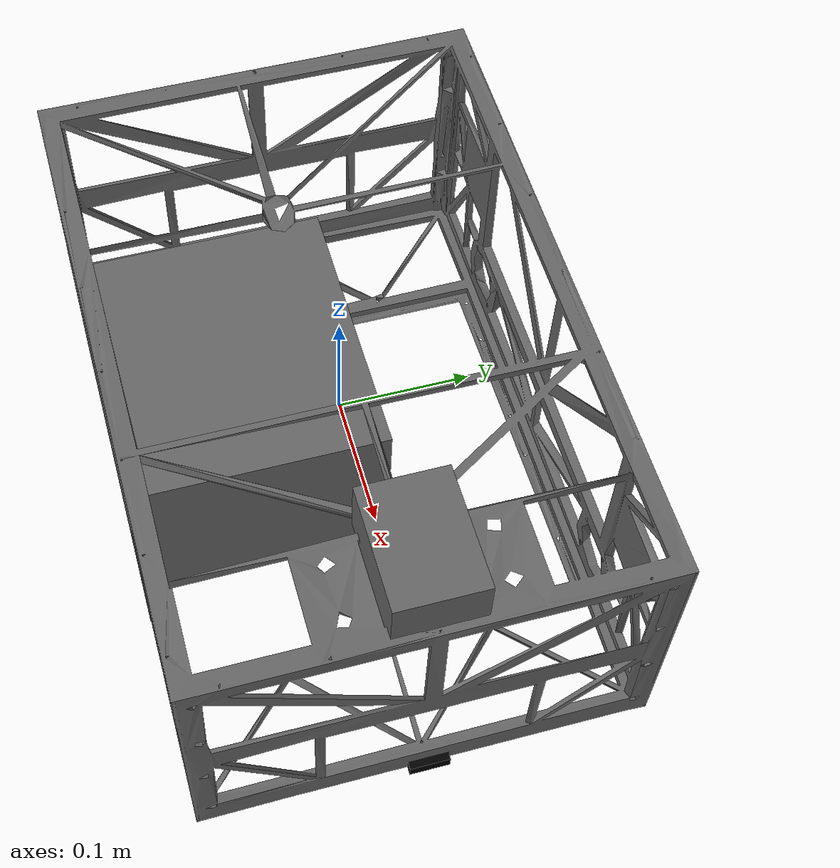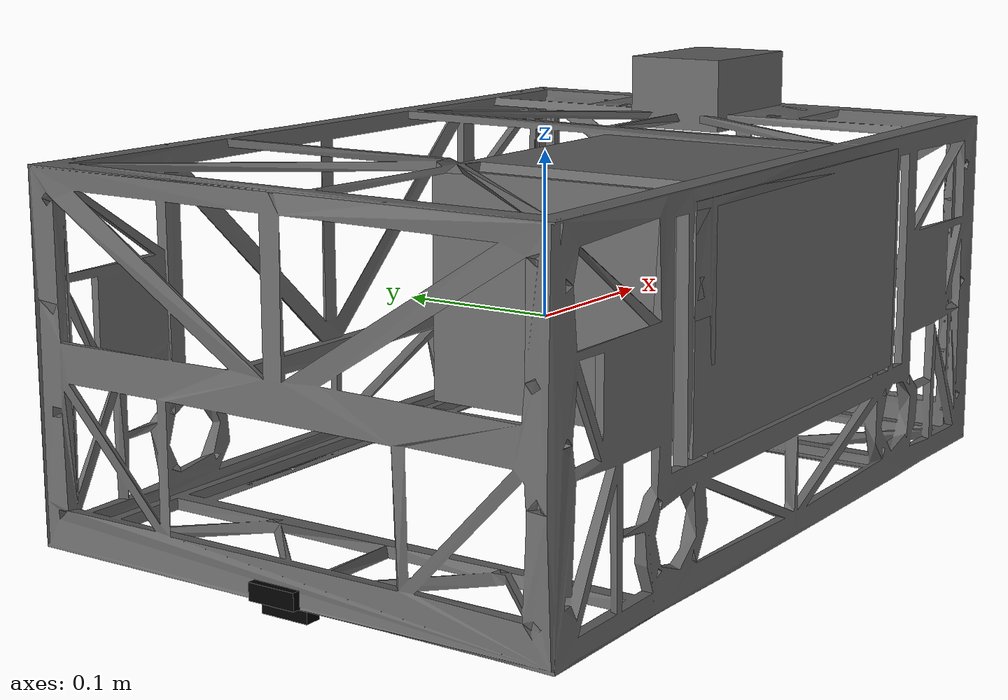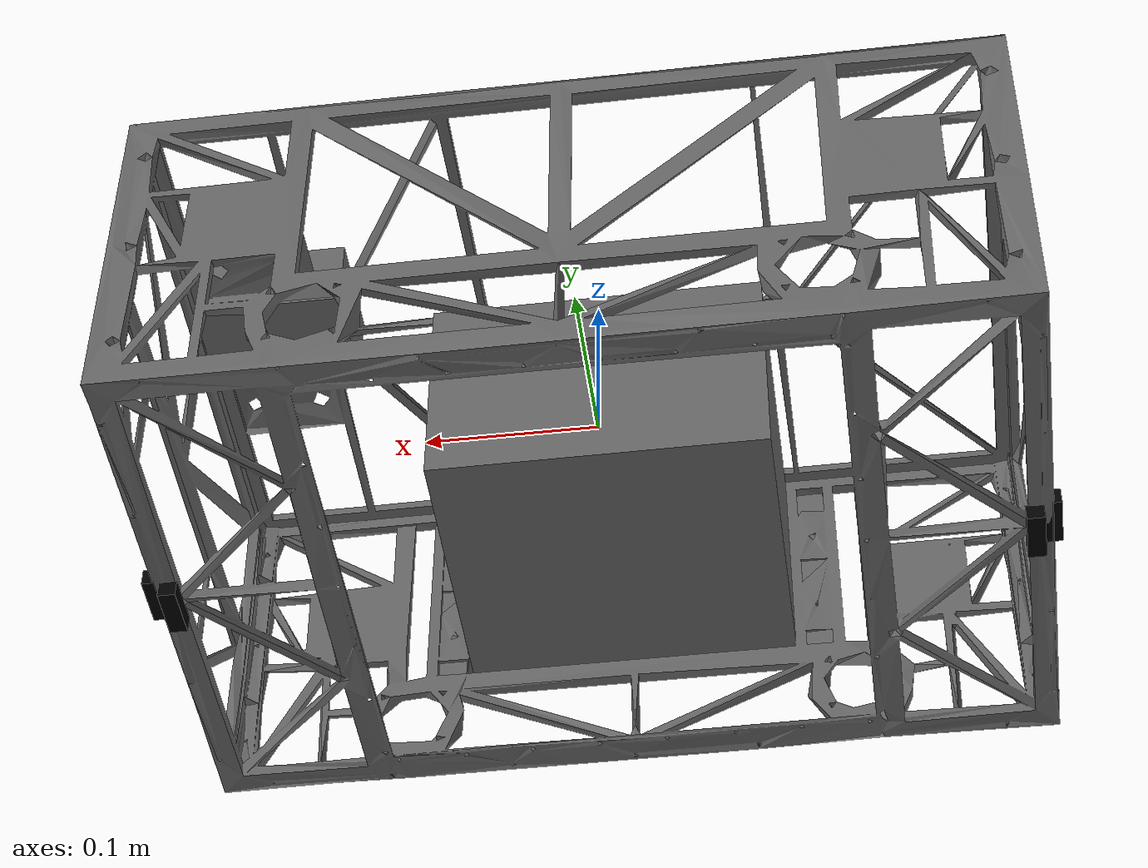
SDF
<?xml version="1.0" ?>
<!-- |    This document was autogenerated by xacro from /home/clynamen/teamdiana/gazebo-assets/models/definitions/rover_amalia_chassis/model.xacro | -->
<!-- |    EDITING THIS FILE BY HAND IS NOT RECOMMENDED                                 | -->
<sdf version="1.5" xmlns:xacro="http://www.w3.org/2001/XMLSchema-instance">
  <model name="rover_amalia_chassis">
    <link name="rover_amalia_chassis">
      <pose>0 0 0 0 0 0</pose>
      <inertial>
        <pose>0.0216667 0 -0.0215556 0 -0 0</pose>
        <mass>15.6</mass>
        <inertia>
          <ixx>0.6385976</ixx>
          <ixy>0</ixy>
          <ixz>0</ixz>
          <iyy>0.521</iyy>
          <iyz>0</iyz>
          <izz>0.318954</izz>
        </inertia>
      </inertial>
      <visual name="rover_amalia_chassis_body_visual">
        <pose>0 0 0 0 0 0</pose>
        <geometry>
          <mesh>
            <uri>model://rover_amalia_chassis/meshes/chassis.dae</uri>
          </mesh>
        </geometry>
        <material>
          <diffuse>0.4 0.4 0.4 1</diffuse>
          <specular>1 1 1 1</specular>
        </material>
      </visual>
      <collision name="rover_amalia_chassis_body_collision">
        <pose>0 0 0 0 0 0</pose>
        <geometry>
          <box>
            <size>0.492 0.334 0.215</size>
          </box>
        </geometry>
        <max_contacts>10</max_contacts>
      </collision>
      <collision name="rover_amalia_chassis_turret_base_collision">
        <pose>0.195 0 0.12 0 0 0</pose>
        <geometry>
          <box>
            <size>0.089 0.064 0.046</size>
          </box>
        </geometry>
        <max_contacts>10</max_contacts>
      </collision>
      <visual name="rover_amalia_chassis_turret_base_visual">
        <pose>0.195 0 0.12 0 0 0</pose>
        <geometry>
          <box>
            <size>0.089 0.064 0.046</size>
          </box>
        </geometry>
        <material>
          <diffuse>0.4 0.4 0.4 1</diffuse>
          <specular>1 1 1 1</specular>
        </material>
      </visual>
      <visual name="rover_amalia_chassis_cpci">
        <pose>0 -0.08 0.1 0 0 0</pose>
        <geometry>
          <mesh>
            <uri>model://rover_amalia_chassis/meshes/cpci.dae</uri>
          </mesh>
        </geometry>
        <material>
          <diffuse>0.4 0.4 0.4 1</diffuse>
          <specular>1 1 1 1</specular>
        </material>
      </visual>
      <self_collide>0</self_collide>
      <kinematic>0</kinematic>
      <gravity>1</gravity>
    </link>
    <link name="rover_amalia_rangefinder_front">
      <visual name="rover_amalia_chassis_front_up_rangefinder_visual">
        <pose>0.246 0 -0.1 0 -0 0</pose>
        <geometry>
          <box>
            <size>0.01 0.03 0.01</size>
          </box>
        </geometry>
        <material>
          <ambient>0.1 0.1 0.1 1</ambient>
          <diffuse>0 0 0 1</diffuse>
        </material>
      </visual>
      <visual name="rover_amalia_chassis_front_down_rangefinder_visual">
        <pose>0.236 0 -0.11 0 1.57 0</pose>
        <geometry>
          <box>
            <size>0.01 0.03 0.01</size>
          </box>
        </geometry>
        <material>
          <ambient>0.1 0.1 0.1 1</ambient>
          <diffuse>0 0 0 1</diffuse>
        </material>
      </visual>
      <sensor name="range_front_down_ray" type="ray">
        <pose>0.25 0 -0.1 0 1.5707963 0</pose>
        <ray>
          <scan>
            <horizontal>
              <!-- could be just 1, but with 10 it is visualized in the gui-->
              <samples>20</samples>
              <resolution>1.0</resolution>
              <min_angle>-0.02</min_angle>
              <max_angle>0.02</max_angle>
            </horizontal>
          </scan>
          <range>
            <min>0.15</min>
            <max>3</max>
          </range>
        </ray>
        <plugin filename="libgazebo_ros_range_finder.so" name="range_finder_plugin_front">
          <gaussianNoise>0.005</gaussianNoise>
          <alwaysOn>true</alwaysOn>
          <updateRate>20</updateRate>
          <topicName>/ADC/range_front_down</topicName>
          <frameName>rover_amalia_rangefinder_front</frameName>
        </plugin>
        <always_on>true</always_on>
        <update_rate>2.0</update_rate>
        <visualize>true</visualize>
      </sensor>
    </link>
    <link name="rover_amalia_rangefinder_rear">
      <visual name="rover_amalia_chassis_rear_up_rangefinder_visual">
        <pose>-0.246 0 -0.1 3.14159 0.00159265 3.14159</pose>
        <geometry>
          <box>
            <size>0.01 0.03 0.01</size>
          </box>
        </geometry>
        <material>
          <ambient>0.1 0.1 0.1 1</ambient>
          <diffuse>0 0 0 1</diffuse>
        </material>
      </visual>
      <visual name="rover_amalia_chassis_rear_down_rangefinder_visual">
        <pose>-0.236 0 -0.11 0 1.57 0</pose>
        <geometry>
          <box>
            <size>0.01 0.03 0.01</size>
          </box>
        </geometry>
        <material>
          <ambient>0.1 0.1 0.1 1</ambient>
          <diffuse>0 0 0 1</diffuse>
        </material>
      </visual>
      <sensor name="range_rear_down_ray" type="ray">
        <pose>-0.238 0 -0.11 0 1.57 0</pose>
        <ray>
          <scan>
            <horizontal>
              <!-- could be just 1, but with 10 it is visualized in the gui-->
              <samples>20</samples>
              <resolution>1.0</resolution>
              <min_angle>-0.02</min_angle>
              <max_angle>0.02</max_angle>
            </horizontal>
          </scan>
          <range>
            <min>0.15</min>
            <max>3</max>
          </range>
        </ray>
        <plugin filename="libgazebo_ros_range_finder.so" name="range_finder_plugin_rear">
          <gaussianNoise>0.005</gaussianNoise>
          <alwaysOn>true</alwaysOn>
          <updateRate>20</updateRate>
          <topicName>/ADC/range_rear_down</topicName>
          <frameName>rover_amalia_rangefinder_rear</frameName>
        </plugin>
        <always_on>true</always_on>
        <update_rate>2.0</update_rate>
        <visualize>true</visualize>
      </sensor>
    </link>
    <joint name="rover_amalia_joint_chassis_rangefinder_front" type="revolute">
      <child>rover_amalia_rangefinder_front</child>
      <parent>rover_amalia_chassis</parent>
      <axis>
        <xyz>0 0 1</xyz>
        <limit>
          <lower>-1e-16</lower>
          <upper>1e-16</upper>
          <effort>1000</effort>
          <velocity>1000</velocity>
        </limit>
      </axis>
    </joint>
    <joint name="rover_amalia_joint_chassis_rangefinder_rear" type="revolute">
      <child>rover_amalia_rangefinder_rear</child>
      <parent>rover_amalia_chassis</parent>
      <axis>
        <xyz>0 0 1</xyz>
        <limit>
          <lower>-1e-16</lower>
          <upper>1e-16</upper>
          <effort>1000</effort>
          <velocity>1000</velocity>
        </limit>
      </axis>
    </joint>
    <plugin filename="libgazebo_ros_joint_state_publisher.so" name="rangefinder_rear_p">
      <robotNamespace/>
      <jointName>rover_amalia_joint_chassis_rangefinder_rear</jointName>
      <updateRate>10</updateRate>
    </plugin>
    <plugin filename="libgazebo_ros_joint_state_publisher.so" name="rangefinder_front_p">
      <robotNamespace/>
      <jointName>rover_amalia_joint_chassis_rangefinder_front</jointName>
      <updateRate>10</updateRate>
    </plugin>
    <plugin filename="libgazebo_ros_imu.so" name="imu_plugin">
      <alwaysOn>true</alwaysOn>
      <bodyName>rover_amalia_chassis</bodyName>
      <topicName>imu_data</topicName>
      <serviceName>imu_service</serviceName>
      <gaussianNoise>0.0</gaussianNoise>
      <updateRate>10.0</updateRate>
      <xyzOffset>0 0 0</xyzOffset>
      <rpyOffset>0 0 0</rpyOffset>
    </plugin>
    <pose>0 0 0 0 0 0</pose>
  </model>
</sdf>
